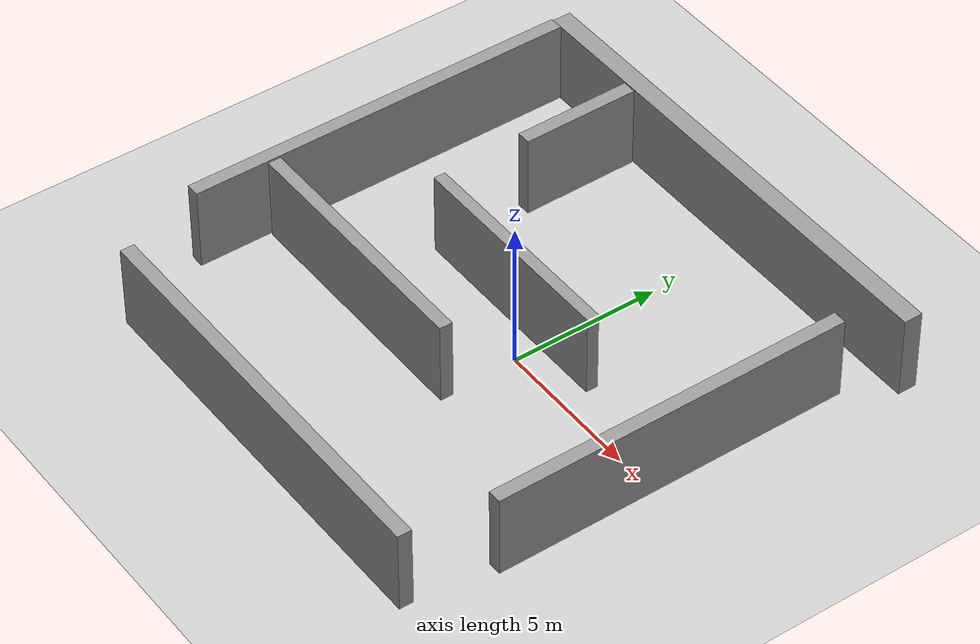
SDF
<sdf version="1.6">
 <world name="default">
  <light name="sun" type="directional">
   <pose>0 0 10 0 -0 0</pose>
   <diffuse>0.8 0.8 0.8 1</diffuse>
   <specular>0.2 0.2 0.2 1</specular>
   <attenuation>
    <range>1000</range>
    <constant>0.9</constant>
    <linear>0.01</linear>
    <quadratic>0.001</quadratic>
   </attenuation>
   <direction>-0.5 0.1 -0.9</direction>
  </light>
  <model name="ground_plane">
   <static>1</static>
   <link name="link">
    <collision name="collision">
     <geometry><plane><normal>0 0 1</normal><size>100 100</size></plane></geometry>
     <surface><friction><ode><mu>100</mu><mu2>50</mu2></ode></friction></surface>
    </collision>
    <visual name="visual">
     <cast_shadows>0</cast_shadows>
     <geometry><plane><normal>0 0 1</normal><size>100 100</size></plane></geometry>
     <material>
      <script><uri>file://media/materials/scripts/gazebo.material</uri><name>Gazebo/Grey</name></script>
     </material>
    </visual>
    <velocity_decay><linear>0</linear><angular>0</angular></velocity_decay>
   </link>
  </model>
  <physics name="default_physics" default="0" type="ode">
   <max_step_size>0.001</max_step_size>
   <real_time_factor>1</real_time_factor>
   <real_time_update_rate>1000</real_time_update_rate>
  </physics>
  <scene><ambient>0.4 0.4 0.4 1</ambient><background>0.7 0.7 0.7 1</background><shadows>1</shadows></scene>
  <spherical_coordinates>
   <surface_model>EARTH_WGS84</surface_model>
   <latitude_deg>0</latitude_deg>
   <longitude_deg>0</longitude_deg>
   <elevation>0</elevation>
   <heading_deg>0</heading_deg>
  </spherical_coordinates>
  <gravity>0 0 -9.8</gravity>
  <magnetic_field>6e-06 2.3e-05 -4.2e-05</magnetic_field>
  <atmosphere type="adiabatic"/>
  <plugin name="collision_map_creator" filename="libcollision_map_creator.so"/>
  <model name="grey_wall_3">
   <link name="link">
    <pose>0.026717 2.52011 1.4 0 -0 0</pose>
    <velocity_decay><linear>0</linear><angular>0</angular></velocity_decay>
    <inertial>
     <inertia><ixx>0</ixx><ixy>0</ixy><ixz>0</ixz><iyy>0</iyy><iyz>0</iyz><izz>0</izz></inertia>
     <mass>0</mass>
    </inertial>
    <visual name="visual">
     <cast_shadows>0</cast_shadows>
     <geometry><box><size>11.9456 0.461197 2.8</size></box></geometry>
     <material>
      <script>
       <uri>model://grey_wall/materials/scripts</uri>
       <uri>model://grey_wall/materials/textures</uri>
       <name>vrc/grey_wall</name>
      </script>
     </material>
    </visual>
    <collision name="collision">
     <geometry><box><size>11.9456 0.461197 2.8</size></box></geometry>
     <surface>
      <friction>
       <ode><mu>1</mu><mu2>1</mu2><fdir1>0 0 0</fdir1><slip1>0</slip1><slip2>0</slip2></ode>
       <torsional>
        <coefficient>1</coefficient>
        <patch_radius>0</patch_radius>
        <surface_radius>0</surface_radius>
        <use_patch_radius>1</use_patch_radius>
        <ode><slip>0</slip></ode>
       </torsional>
      </friction>
      <bounce><restitution_coefficient>0</restitution_coefficient><threshold>1e+06</threshold></bounce>
      <contact>
       <collide_without_contact>0</collide_without_contact>
       <collide_without_contact_bitmask>1</collide_without_contact_bitmask>
       <collide_bitmask>1</collide_bitmask>
       <ode>
        <soft_cfm>0</soft_cfm>
        <soft_erp>0.2</soft_erp>
        <kp>1e+13</kp>
        <kd>1</kd>
        <max_vel>0.01</max_vel>
        <min_depth>0</min_depth>
       </ode>
       <bullet>
        <split_impulse>1</split_impulse>
        <split_impulse_penetration_threshold>-0.01</split_impulse_penetration_threshold>
        <soft_cfm>0</soft_cfm>
        <soft_erp>0.2</soft_erp>
        <kp>1e+13</kp>
        <kd>1</kd>
       </bullet>
      </contact>
     </surface>
    </collision>
   </link>
   <static>1</static>
   <pose>3.76758 0.74778 0.00212 0 0 -1.57102</pose>
  </model>
  <model name="grey_wall_0">
   <link name="link">
    <pose>3.21001 -5.01815 1.4 0 -0 0</pose>
    <velocity_decay><linear>0</linear><angular>0</angular></velocity_decay>
    <inertial>
     <inertia><ixx>0</ixx><ixy>0</ixy><ixz>0</ixz><iyy>0</iyy><iyz>0</iyz><izz>0</izz></inertia>
     <mass>0</mass>
    </inertial>
    <visual name="visual">
     <cast_shadows>0</cast_shadows>
     <geometry><box><size>13.9336 0.46689 2.8</size></box></geometry>
     <material>
      <script>
       <uri>model://grey_wall/materials/scripts</uri>
       <uri>model://grey_wall/materials/textures</uri>
       <name>vrc/grey_wall</name>
      </script>
     </material>
    </visual>
    <collision name="collision">
     <geometry><box><size>13.9336 0.46689 2.8</size></box></geometry>
     <surface>
      <friction>
       <ode><mu>1</mu><mu2>1</mu2><fdir1>0 0 0</fdir1><slip1>0</slip1><slip2>0</slip2></ode>
       <torsional>
        <coefficient>1</coefficient>
        <patch_radius>0</patch_radius>
        <surface_radius>0</surface_radius>
        <use_patch_radius>1</use_patch_radius>
        <ode><slip>0</slip></ode>
       </torsional>
      </friction>
      <bounce><restitution_coefficient>0</restitution_coefficient><threshold>1e+06</threshold></bounce>
      <contact>
       <collide_without_contact>0</collide_without_contact>
       <collide_without_contact_bitmask>1</collide_without_contact_bitmask>
       <collide_bitmask>1</collide_bitmask>
       <ode>
        <soft_cfm>0</soft_cfm>
        <soft_erp>0.2</soft_erp>
        <kp>1e+13</kp>
        <kd>1</kd>
        <max_vel>0.01</max_vel>
        <min_depth>0</min_depth>
       </ode>
       <bullet>
        <split_impulse>1</split_impulse>
        <split_impulse_penetration_threshold>-0.01</split_impulse_penetration_threshold>
        <soft_cfm>0</soft_cfm>
        <soft_erp>0.2</soft_erp>
        <kp>1e+13</kp>
        <kd>1</kd>
       </bullet>
      </contact>
     </surface>
    </collision>
   </link>
   <static>1</static>
   <pose>-4.17438 -2.94975 0 0 -0 0</pose>
  </model>
  <model name="grey_wall_2">
   <link name="link">
    <pose>0.278909 -2.45693 1.4 0 -0 0</pose>
    <velocity_decay><linear>0</linear><angular>0</angular></velocity_decay>
    <inertial>
     <inertia><ixx>0</ixx><ixy>0</ixy><ixz>0</ixz><iyy>0</iyy><iyz>0</iyz><izz>0</izz></inertia>
     <mass>0</mass>
    </inertial>
    <visual name="visual">
     <cast_shadows>0</cast_shadows>
     <geometry><box><size>8.72658 0.437861 2.8</size></box></geometry>
     <material>
      <script>
       <uri>model://grey_wall/materials/scripts</uri>
       <uri>model://grey_wall/materials/textures</uri>
       <name>vrc/grey_wall</name>
      </script>
     </material>
    </visual>
    <collision name="collision">
     <geometry><box><size>8.72658 0.437861 2.8</size></box></geometry>
     <surface>
      <friction>
       <ode><mu>1</mu><mu2>1</mu2><fdir1>0 0 0</fdir1><slip1>0</slip1><slip2>0</slip2></ode>
       <torsional>
        <coefficient>1</coefficient>
        <patch_radius>0</patch_radius>
        <surface_radius>0</surface_radius>
        <use_patch_radius>1</use_patch_radius>
        <ode><slip>0</slip></ode>
       </torsional>
      </friction>
      <bounce><restitution_coefficient>0</restitution_coefficient><threshold>1e+06</threshold></bounce>
      <contact>
       <collide_without_contact>0</collide_without_contact>
       <collide_without_contact_bitmask>1</collide_without_contact_bitmask>
       <collide_bitmask>1</collide_bitmask>
       <ode>
        <soft_cfm>0</soft_cfm>
        <soft_erp>0.2</soft_erp>
        <kp>1e+13</kp>
        <kd>1</kd>
        <max_vel>0.01</max_vel>
        <min_depth>0</min_depth>
       </ode>
       <bullet>
        <split_impulse>1</split_impulse>
        <split_impulse_penetration_threshold>-0.01</split_impulse_penetration_threshold>
        <soft_cfm>0</soft_cfm>
        <soft_erp>0.2</soft_erp>
        <kp>1e+13</kp>
        <kd>1</kd>
       </bullet>
      </contact>
     </surface>
    </collision>
   </link>
   <static>1</static>
   <pose>-4.55904 0 0 0 -0 0</pose>
  </model>
  <model name="grey_wall_3_clone">
   <link name="link">
    <pose>0.856552 1.3214 1.4 0 -0 0</pose>
    <velocity_decay><linear>0</linear><angular>0</angular></velocity_decay>
    <inertial>
     <inertia><ixx>0</ixx><ixy>0</ixy><ixz>0</ixz><iyy>0</iyy><iyz>0</iyz><izz>0</izz></inertia>
     <mass>0</mass>
    </inertial>
    <visual name="visual">
     <cast_shadows>0</cast_shadows>
     <geometry><box><size>13.1436 0.462092 2.8</size></box></geometry>
     <material>
      <script>
       <uri>model://grey_wall/materials/scripts</uri>
       <uri>model://grey_wall/materials/textures</uri>
       <name>vrc/grey_wall</name>
      </script>
     </material>
    </visual>
    <collision name="collision">
     <geometry><box><size>13.1436 0.462092 2.8</size></box></geometry>
     <surface>
      <friction>
       <ode><mu>1</mu><mu2>1</mu2><fdir1>0 0 0</fdir1><slip1>0</slip1><slip2>0</slip2></ode>
       <torsional>
        <coefficient>1</coefficient>
        <patch_radius>0</patch_radius>
        <surface_radius>0</surface_radius>
        <use_patch_radius>1</use_patch_radius>
        <ode><slip>0</slip></ode>
       </torsional>
      </friction>
      <bounce><restitution_coefficient>0</restitution_coefficient><threshold>1e+06</threshold></bounce>
      <contact>
       <collide_without_contact>0</collide_without_contact>
       <collide_without_contact_bitmask>1</collide_without_contact_bitmask>
       <collide_bitmask>1</collide_bitmask>
       <ode>
        <soft_cfm>0</soft_cfm>
        <soft_erp>0.2</soft_erp>
        <kp>1e+13</kp>
        <kd>1</kd>
        <max_vel>0.01</max_vel>
        <min_depth>0</min_depth>
       </ode>
       <bullet>
        <split_impulse>1</split_impulse>
        <split_impulse_penetration_threshold>-0.01</split_impulse_penetration_threshold>
        <soft_cfm>0</soft_cfm>
        <soft_erp>0.2</soft_erp>
        <kp>1e+13</kp>
        <kd>1</kd>
       </bullet>
      </contact>
     </surface>
    </collision>
   </link>
   <static>1</static>
   <pose>-10.2635 2.31244 0.00212 0 0 -1.57102</pose>
  </model>
  <model name="grey_wall_5">
   <link name="link">
    <pose>0.486846 -0.925498 1.4 0 -0 0</pose>
    <velocity_decay><linear>0</linear><angular>0</angular></velocity_decay>
    <inertial>
     <inertia><ixx>0</ixx><ixy>0</ixy><ixz>0</ixz><iyy>0</iyy><iyz>0</iyz><izz>0</izz></inertia>
     <mass>0</mass>
    </inertial>
    <visual name="visual">
     <cast_shadows>0</cast_shadows>
     <geometry><box><size>7.5 0.398887 2.8</size></box></geometry>
     <material>
      <script>
       <uri>model://grey_wall/materials/scripts</uri>
       <uri>model://grey_wall/materials/textures</uri>
       <name>vrc/grey_wall</name>
      </script>
     </material>
    </visual>
    <collision name="collision">
     <geometry><box><size>7.5 0.398887 2.8</size></box></geometry>
     <surface>
      <friction>
       <ode><mu>1</mu><mu2>1</mu2><fdir1>0 0 0</fdir1><slip1>0</slip1><slip2>0</slip2></ode>
       <torsional>
        <coefficient>1</coefficient>
        <patch_radius>0</patch_radius>
        <surface_radius>0</surface_radius>
        <use_patch_radius>1</use_patch_radius>
        <ode><slip>0</slip></ode>
       </torsional>
      </friction>
      <bounce><restitution_coefficient>0</restitution_coefficient><threshold>1e+06</threshold></bounce>
      <contact>
       <collide_without_contact>0</collide_without_contact>
       <collide_without_contact_bitmask>1</collide_without_contact_bitmask>
       <collide_bitmask>1</collide_bitmask>
       <ode>
        <soft_cfm>0</soft_cfm>
        <soft_erp>0.2</soft_erp>
        <kp>1e+13</kp>
        <kd>1</kd>
        <max_vel>0.01</max_vel>
        <min_depth>0</min_depth>
       </ode>
       <bullet>
        <split_impulse>1</split_impulse>
        <split_impulse_penetration_threshold>-0.01</split_impulse_penetration_threshold>
        <soft_cfm>0</soft_cfm>
        <soft_erp>0.2</soft_erp>
        <kp>1e+13</kp>
        <kd>1</kd>
       </bullet>
      </contact>
     </surface>
    </collision>
   </link>
   <static>1</static>
   <pose>-2 2 0 0 -0 0</pose>
  </model>
  <model name="grey_wall_5_clone">
   <link name="link">
    <pose>-1.51161 -0.055914 1.4 0 0 -1.56426</pose>
    <velocity_decay><linear>0</linear><angular>0</angular></velocity_decay>
    <inertial>
     <inertia><ixx>0</ixx><ixy>0</ixy><ixz>0</ixz><iyy>0</iyy><iyz>0</iyz><izz>0</izz></inertia>
     <mass>0</mass>
    </inertial>
    <visual name="visual">
     <cast_shadows>0</cast_shadows>
     <geometry><box><size>3.94512 0.465789 2.8</size></box></geometry>
     <material>
      <script>
       <uri>model://grey_wall/materials/scripts</uri>
       <uri>model://grey_wall/materials/textures</uri>
       <name>vrc/grey_wall</name>
      </script>
     </material>
    </visual>
    <collision name="collision">
     <geometry><box><size>3.94512 0.465789 2.8</size></box></geometry>
     <surface>
      <friction>
       <ode><mu>1</mu><mu2>1</mu2><fdir1>0 0 0</fdir1><slip1>0</slip1><slip2>0</slip2></ode>
       <torsional>
        <coefficient>1</coefficient>
        <patch_radius>0</patch_radius>
        <surface_radius>0</surface_radius>
        <use_patch_radius>1</use_patch_radius>
        <ode><slip>0</slip></ode>
       </torsional>
      </friction>
      <bounce><restitution_coefficient>0</restitution_coefficient><threshold>1e+06</threshold></bounce>
      <contact>
       <collide_without_contact>0</collide_without_contact>
       <collide_without_contact_bitmask>1</collide_without_contact_bitmask>
       <collide_bitmask>1</collide_bitmask>
       <ode>
        <soft_cfm>0</soft_cfm>
        <soft_erp>0.2</soft_erp>
        <kp>1e+13</kp>
        <kd>1</kd>
        <max_vel>0.01</max_vel>
        <min_depth>0</min_depth>
       </ode>
       <bullet>
        <split_impulse>1</split_impulse>
        <split_impulse_penetration_threshold>-0.01</split_impulse_penetration_threshold>
        <soft_cfm>0</soft_cfm>
        <soft_erp>0.2</soft_erp>
        <kp>1e+13</kp>
        <kd>1</kd>
       </bullet>
      </contact>
     </surface>
    </collision>
   </link>
   <static>1</static>
   <pose>-3.68193 6.0786 0 0 -0 0</pose>
  </model>
  <model name="grey_wall">
   <link name="link">
    <pose>3.667 1.82664 1.4 0 -0 0</pose>
    <velocity_decay><linear>0</linear><angular>0</angular></velocity_decay>
    <inertial>
     <inertia><ixx>0</ixx><ixy>0</ixy><ixz>0</ixz><iyy>0</iyy><iyz>0</iyz><izz>0</izz></inertia>
     <mass>0</mass>
    </inertial>
    <visual name="visual">
     <cast_shadows>0</cast_shadows>
     <geometry><box><size>16.6337 0.624457 2.8</size></box></geometry>
     <material>
      <script>
       <uri>model://grey_wall/materials/scripts</uri>
       <uri>model://grey_wall/materials/textures</uri>
       <name>vrc/grey_wall</name>
      </script>
     </material>
    </visual>
    <collision name="collision">
     <geometry><box><size>16.6337 0.624457 2.8</size></box></geometry>
     <surface>
      <friction>
       <ode><mu>1</mu><mu2>1</mu2><fdir1>0 0 0</fdir1><slip1>0</slip1><slip2>0</slip2></ode>
       <torsional>
        <coefficient>1</coefficient>
        <patch_radius>0</patch_radius>
        <surface_radius>0</surface_radius>
        <use_patch_radius>1</use_patch_radius>
        <ode><slip>0</slip></ode>
       </torsional>
      </friction>
      <bounce><restitution_coefficient>0</restitution_coefficient><threshold>1e+06</threshold></bounce>
      <contact>
       <collide_without_contact>0</collide_without_contact>
       <collide_without_contact_bitmask>1</collide_without_contact_bitmask>
       <collide_bitmask>1</collide_bitmask>
       <ode>
        <soft_cfm>0</soft_cfm>
        <soft_erp>0.2</soft_erp>
        <kp>1e+13</kp>
        <kd>1</kd>
        <max_vel>0.01</max_vel>
        <min_depth>0</min_depth>
       </ode>
       <bullet>
        <split_impulse>1</split_impulse>
        <split_impulse_penetration_threshold>-0.01</split_impulse_penetration_threshold>
        <soft_cfm>0</soft_cfm>
        <soft_erp>0.2</soft_erp>
        <kp>1e+13</kp>
        <kd>1</kd>
       </bullet>
      </contact>
     </surface>
    </collision>
   </link>
   <static>1</static>
   <pose>-4.45669 6.51369 0 0 -0 0</pose>
  </model>
 </world>
</sdf>
